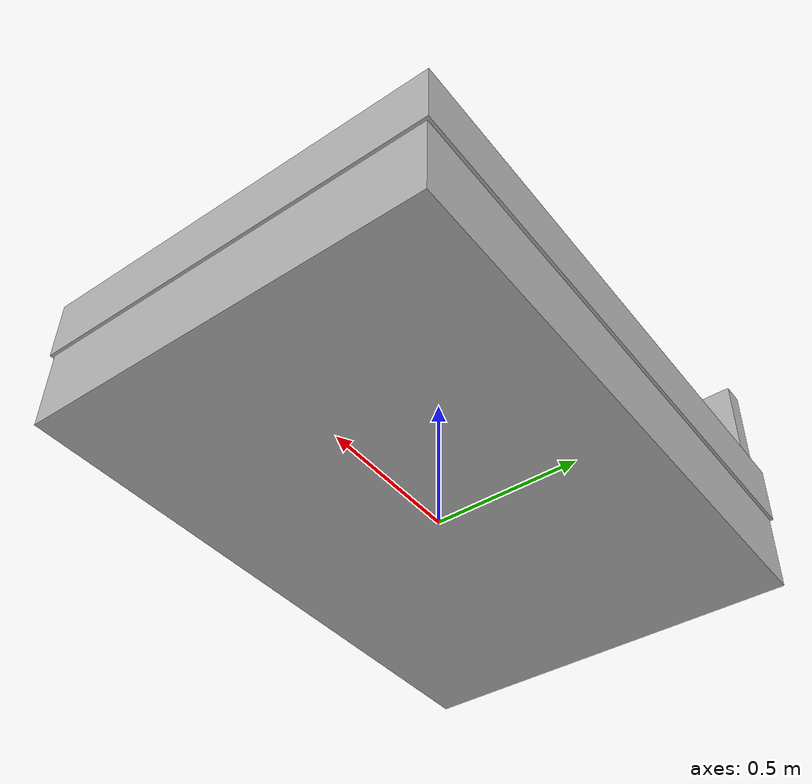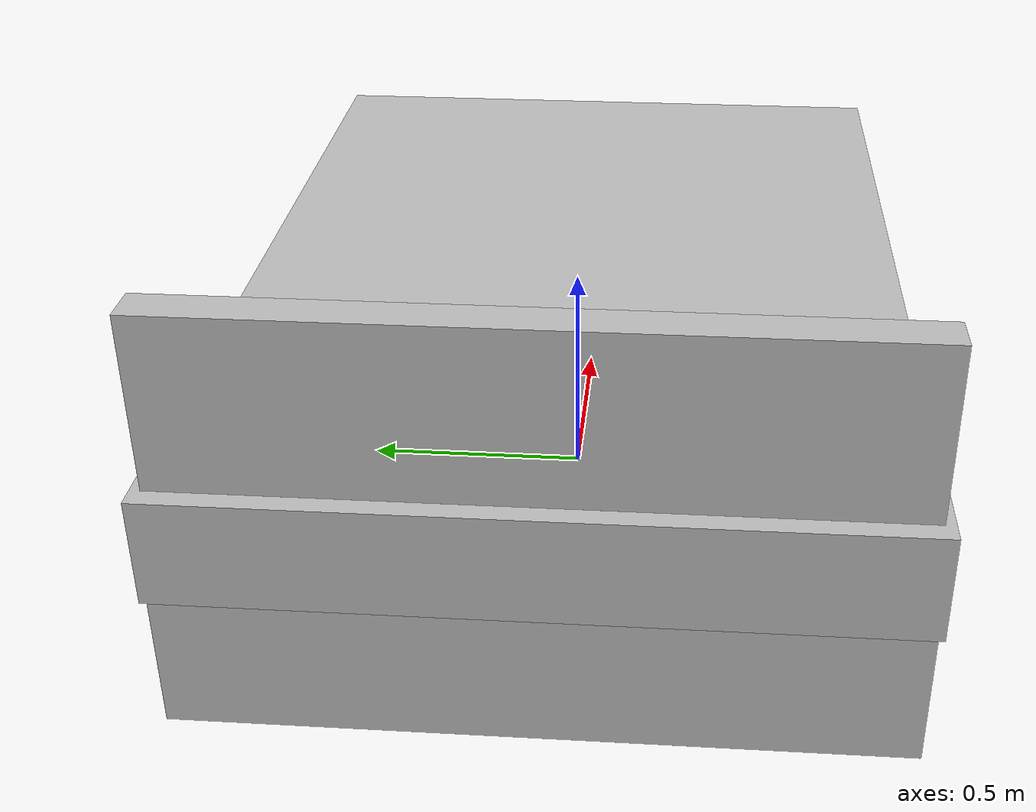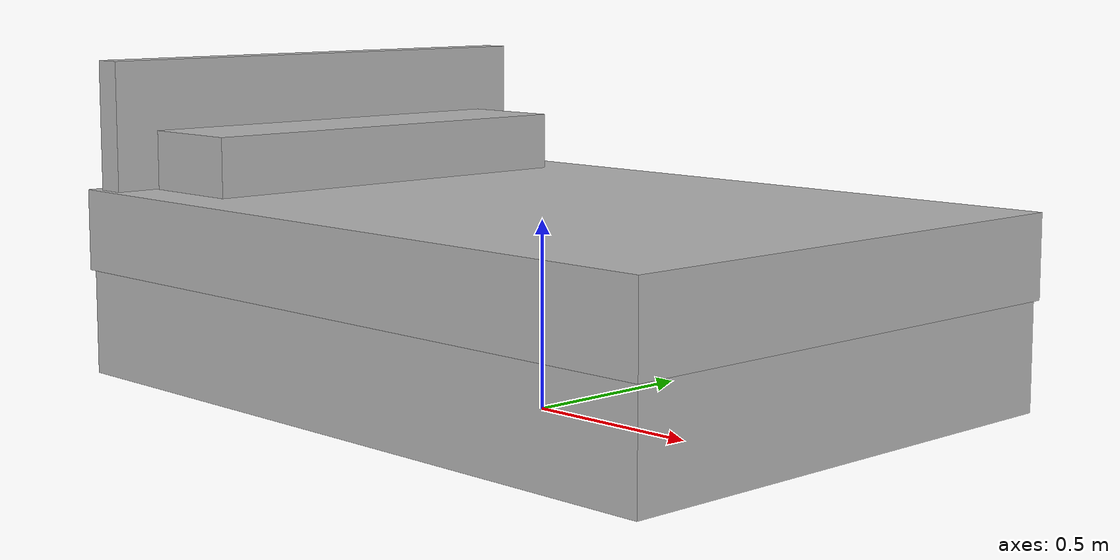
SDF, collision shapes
<?xml version="1.0"?>
<sdf version="1.9">
  <model name="bed">
    <static>true</static>
    <link name="body">
      <!-- Simple furniture-scale collisions are enough for the bed. -->
      <collision name="frame_collision">
        <pose>0 0 0.20 0 0 0</pose>
        <geometry><box><size>2.04 1.42 0.31</size></box></geometry>
      </collision>
      <collision name="mattress_collision">
        <pose>0 0 0.44 0 0 0</pose>
        <geometry><box><size>2.06 1.44 0.22</size></box></geometry>
      </collision>
      <collision name="headboard_collision">
        <pose>-0.95 0 0.54 0 0 0</pose>
        <geometry><box><size>0.08 1.40 0.72</size></box></geometry>
      </collision>
      <collision name="pillow_collision">
        <pose>-0.75 0 0.61 0 0 0</pose>
        <geometry><box><size>0.30 1.16 0.20</size></box></geometry>
      </collision>

      <visual name="bed_visual">
        <pose>-0.008 0 0 0 0 0</pose>
        <geometry>
          <mesh>
            <uri>model://NormalBed/meshes/bed.obj</uri>
            <scale>1.02 1.42 1.38</scale>
          </mesh>
        </geometry>
      </visual>
    </link>
  </model>
</sdf>
